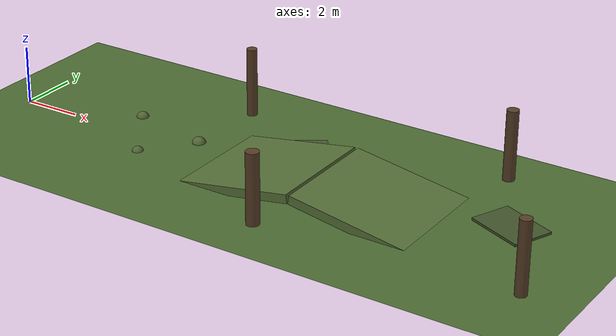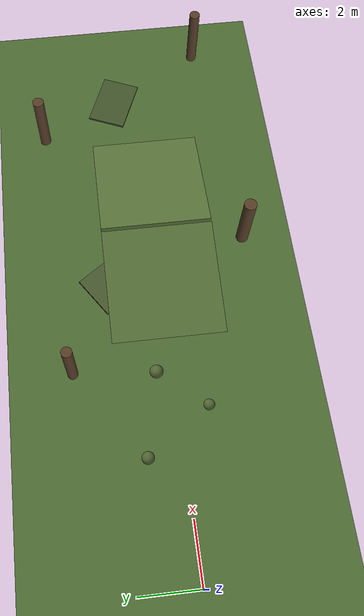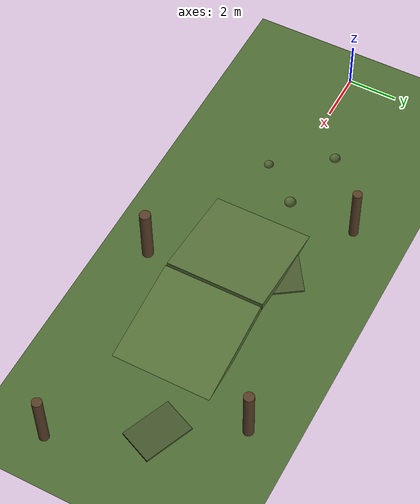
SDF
<?xml version="1.0" ?>
<sdf version="1.9">
  <world name="medium">

    <physics name="1ms" type="ignored">
      <max_step_size>0.001</max_step_size>
      <real_time_factor>1.0</real_time_factor>
    </physics>

    <plugin filename="gz-sim-physics-system"
            name="gz::sim::systems::Physics"/>
    <plugin filename="gz-sim-user-commands-system"
            name="gz::sim::systems::UserCommands"/>
    <plugin filename="gz-sim-scene-broadcaster-system"
            name="gz::sim::systems::SceneBroadcaster"/>
    <plugin filename="gz-sim-sensors-system"
            name="gz::sim::systems::Sensors">
      <render_engine>ogre2</render_engine>
    </plugin>
    <plugin filename="gz-sim-imu-system"
            name="gz::sim::systems::Imu"/>
    <plugin filename="gz-sim-contact-system"
            name="gz::sim::systems::Contact"/>

    <gravity>0 0 -9.8</gravity>
    <magnetic_field>5.565e-6 2.289e-5 -4.239e-5</magnetic_field>

    <scene>
      <ambient>0.5 0.5 0.5 1</ambient>
      <background>0.70 0.78 0.88 1</background>
      <shadows>true</shadows>
    </scene>

    <!-- Lower sun than Easy: longer shadows, more contrast, but still not the
         adversarial case. -->
    <light type="directional" name="sun">
      <cast_shadows>true</cast_shadows>
      <pose>0 0 12 0 0 0</pose>
      <diffuse>0.88 0.86 0.80 1</diffuse>
      <specular>0.2 0.2 0.2 1</specular>
      <attenuation>
        <range>1000</range>
        <constant>0.9</constant>
        <linear>0.01</linear>
        <quadratic>0.001</quadratic>
      </attenuation>
      <direction>-0.7 0.45 -0.55</direction>
    </light>

    <model name="ground_plane">
      <static>true</static>
      <link name="link">
        <collision name="collision">
          <geometry><plane><normal>0 0 1</normal><size>160 160</size></plane></geometry>
          <surface>
            <friction><ode><mu>0.75</mu><mu2>0.75</mu2></ode></friction>
          </surface>
        </collision>
        <visual name="visual">
          <geometry><plane><normal>0 0 1</normal><size>160 160</size></plane></geometry>
          <material>
            <ambient>0.22 0.30 0.16 1</ambient>
            <diffuse>0.30 0.42 0.20 1</diffuse>
            <specular>0.01 0.01 0.01 1</specular>
          </material>
        </visual>
      </link>
    </model>

    <!-- ================================================== slopes ==== -->
    <model name="ramp_up">
      <static>true</static>
      <pose>9.0 0.0 0.0 0 -0.16 0</pose>
      <link name="link">
        <collision name="collision">
          <geometry><box><size>6.0 4.0 0.3</size></box></geometry>
          <surface><friction><ode><mu>0.85</mu><mu2>0.85</mu2></ode></friction></surface>
        </collision>
        <visual name="visual">
          <geometry><box><size>6.0 4.0 0.3</size></box></geometry>
          <material>
            <ambient>0.26 0.32 0.18 1</ambient>
            <diffuse>0.34 0.44 0.22 1</diffuse>
          </material>
        </visual>
      </link>
    </model>

    <!-- T06 negative slope: the descent on the far side. -->
    <model name="ramp_down">
      <static>true</static>
      <pose>15.0 0.0 0.0 0 0.16 0</pose>
      <link name="link">
        <collision name="collision">
          <geometry><box><size>6.0 4.0 0.3</size></box></geometry>
          <surface><friction><ode><mu>0.85</mu><mu2>0.85</mu2></ode></friction></surface>
        </collision>
        <visual name="visual">
          <geometry><box><size>6.0 4.0 0.3</size></box></geometry>
          <material>
            <ambient>0.26 0.32 0.18 1</ambient>
            <diffuse>0.34 0.44 0.22 1</diffuse>
          </material>
        </visual>
      </link>
    </model>

    <!-- ============================================== roughness ==== -->
    <model name="hump_a">
      <static>true</static>
      <pose>4.0 1.2 -0.06 0 0 0</pose>
      <link name="link">
        <collision name="collision">
          <geometry><sphere><radius>0.22</radius></sphere></geometry>
        </collision>
        <visual name="visual">
          <geometry><sphere><radius>0.22</radius></sphere></geometry>
          <material><diffuse>0.32 0.40 0.20 1</diffuse></material>
        </visual>
      </link>
    </model>

    <model name="hump_b">
      <static>true</static>
      <pose>5.5 -1.0 -0.07 0 0 0</pose>
      <link name="link">
        <collision name="collision">
          <geometry><sphere><radius>0.20</radius></sphere></geometry>
        </collision>
        <visual name="visual">
          <geometry><sphere><radius>0.20</radius></sphere></geometry>
          <material><diffuse>0.32 0.40 0.20 1</diffuse></material>
        </visual>
      </link>
    </model>

    <model name="hump_c">
      <static>true</static>
      <pose>6.8 0.6 -0.06 0 0 0</pose>
      <link name="link">
        <collision name="collision">
          <geometry><sphere><radius>0.24</radius></sphere></geometry>
        </collision>
        <visual name="visual">
          <geometry><sphere><radius>0.24</radius></sphere></geometry>
          <material><diffuse>0.32 0.40 0.20 1</diffuse></material>
        </visual>
      </link>
    </model>

    <!-- ================================================== trees ==== -->
    <model name="tree_1">
      <static>true</static>
      <pose>7.0 3.4 1.2 0 0 0</pose>
      <link name="link">
        <collision name="collision">
          <geometry><cylinder><radius>0.18</radius><length>2.4</length></cylinder></geometry>
        </collision>
        <visual name="visual">
          <geometry><cylinder><radius>0.18</radius><length>2.4</length></cylinder></geometry>
          <material>
            <ambient>0.22 0.16 0.10 1</ambient>
            <diffuse>0.34 0.24 0.15 1</diffuse>
          </material>
        </visual>
      </link>
    </model>

    <model name="tree_2">
      <static>true</static>
      <pose>11.5 -3.1 1.2 0 0 0</pose>
      <link name="link">
        <collision name="collision">
          <geometry><cylinder><radius>0.22</radius><length>2.4</length></cylinder></geometry>
        </collision>
        <visual name="visual">
          <geometry><cylinder><radius>0.22</radius><length>2.4</length></cylinder></geometry>
          <material>
            <ambient>0.22 0.16 0.10 1</ambient>
            <diffuse>0.34 0.24 0.15 1</diffuse>
          </material>
        </visual>
      </link>
    </model>

    <model name="tree_3">
      <static>true</static>
      <pose>16.5 3.8 1.2 0 0 0</pose>
      <link name="link">
        <collision name="collision">
          <geometry><cylinder><radius>0.20</radius><length>2.4</length></cylinder></geometry>
        </collision>
        <visual name="visual">
          <geometry><cylinder><radius>0.20</radius><length>2.4</length></cylinder></geometry>
          <material>
            <ambient>0.22 0.16 0.10 1</ambient>
            <diffuse>0.34 0.24 0.15 1</diffuse>
          </material>
        </visual>
      </link>
    </model>

    <model name="tree_4">
      <static>true</static>
      <pose>20.0 -2.4 1.2 0 0 0</pose>
      <link name="link">
        <collision name="collision">
          <geometry><cylinder><radius>0.19</radius><length>2.4</length></cylinder></geometry>
        </collision>
        <visual name="visual">
          <geometry><cylinder><radius>0.19</radius><length>2.4</length></cylinder></geometry>
          <material>
            <ambient>0.22 0.16 0.10 1</ambient>
            <diffuse>0.34 0.24 0.15 1</diffuse>
          </material>
        </visual>
      </link>
    </model>

    <!-- Ground clutter: stereo texture, and a reason for the elevation map to
         have something to say on otherwise open ground. -->
    <model name="clutter_a">
      <static>true</static>
      <pose>10.0 2.0 0.04 0 0 0.6</pose>
      <link name="link">
        <visual name="visual">
          <geometry><box><size>1.6 1.2 0.08</size></box></geometry>
          <material><diffuse>0.28 0.34 0.18 1</diffuse></material>
        </visual>
        <collision name="collision">
          <geometry><box><size>1.6 1.2 0.08</size></box></geometry>
        </collision>
      </link>
    </model>

    <model name="clutter_b">
      <static>true</static>
      <pose>18.0 1.0 0.04 0 0 -0.4</pose>
      <link name="link">
        <visual name="visual">
          <geometry><box><size>2.0 1.4 0.08</size></box></geometry>
          <material><diffuse>0.26 0.33 0.17 1</diffuse></material>
        </visual>
        <collision name="collision">
          <geometry><box><size>2.0 1.4 0.08</size></box></geometry>
        </collision>
      </link>
    </model>

  </world>
</sdf>
